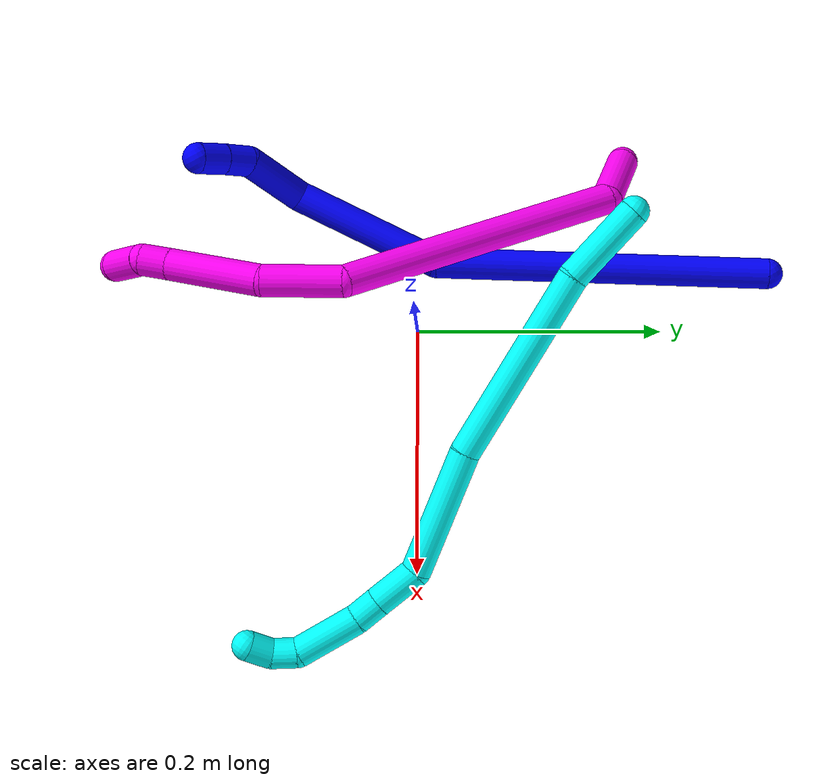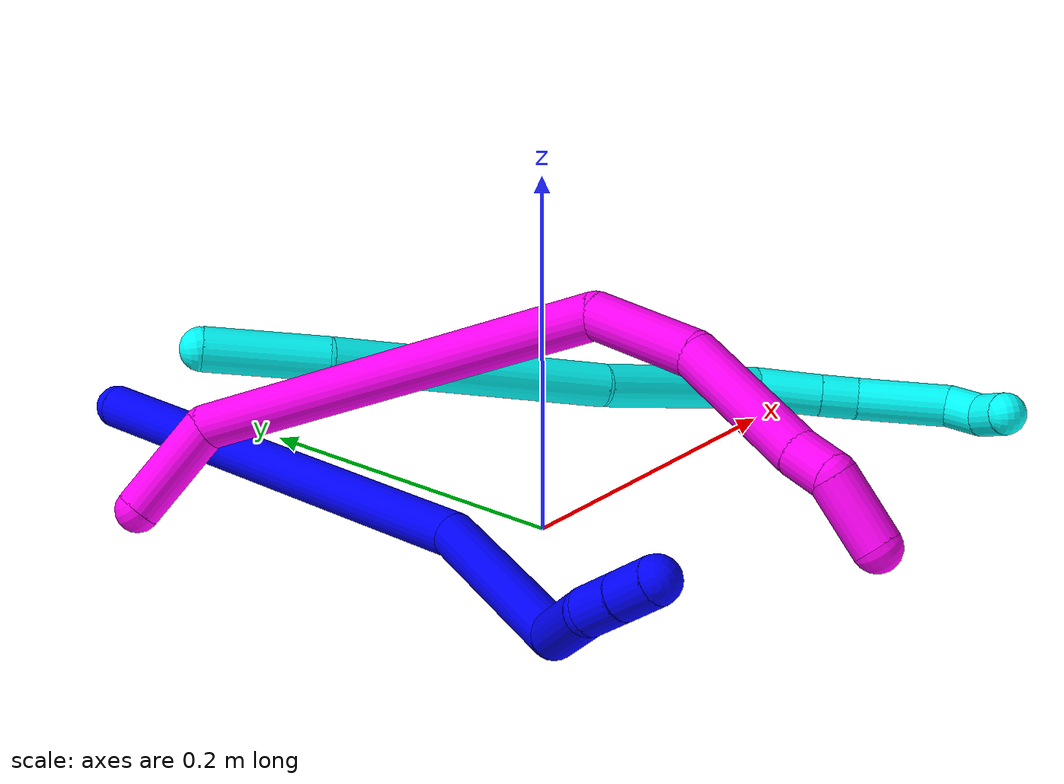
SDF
<sdf version="1.7">
 <world name="default">
  <model name="1">
   <static>0</static>
   <link name="1">
    <collision name="collision-cylinder-e_1_1_4">
     <pose>-0.046354 -0.108998 -0.06722 2.12341 -0.347299 -0.608998</pose>
     <geometry><cylinder><radius>0.0125</radius><length>0.272381</length></cylinder></geometry>
     <surface>
      <friction><ode><mu>1.16</mu><mu2>1.16</mu2><slip1>0</slip1><slip2>0</slip2></ode></friction>
      <contact><ode><kp>1e+06</kp><kd>1</kd><max_vel>0</max_vel><min_depth>0.001</min_depth></ode></contact>
     </surface>
    </collision>
    <visual name="visual-cylinder-e_1_1_4">
     <pose>-0.046354 -0.108998 -0.06722 2.12341 -0.347299 -0.608998</pose>
     <geometry><cylinder><radius>0.0125</radius><length>0.272381</length></cylinder></geometry>
     <material><ambient>0 0 1 1</ambient></material>
    </visual>
    <collision name="collision-cylinder-e_2_4_5">
     <pose>-0.100843 -0.2555 -0.184369 2.49736 -0.12956 -0.383961</pose>
     <geometry><cylinder><radius>0.0125</radius><length>0.125946</length></cylinder></geometry>
     <surface>
      <friction><ode><mu>1.16</mu><mu2>1.16</mu2><slip1>0</slip1><slip2>0</slip2></ode></friction>
      <contact><ode><kp>1e+06</kp><kd>1</kd><max_vel>0</max_vel><min_depth>0.001</min_depth></ode></contact>
     </surface>
    </collision>
    <visual name="visual-cylinder-e_2_4_5">
     <pose>-0.100843 -0.2555 -0.184369 2.49736 -0.12956 -0.383961</pose>
     <geometry><cylinder><radius>0.0125</radius><length>0.125946</length></cylinder></geometry>
     <material><ambient>0 0 1 1</ambient></material>
    </visual>
    <collision name="collision-cylinder-e_3_5_6">
     <pose>-0.124962 -0.296587 -0.256625 2.98247 -0.615266 -2.64985</pose>
     <geometry><cylinder><radius>0.0125</radius><length>0.055382</length></cylinder></geometry>
     <surface>
      <friction><ode><mu>1.16</mu><mu2>1.16</mu2><slip1>0</slip1><slip2>0</slip2></ode></friction>
      <contact><ode><kp>1e+06</kp><kd>1</kd><max_vel>0</max_vel><min_depth>0.001</min_depth></ode></contact>
     </surface>
    </collision>
    <visual name="visual-cylinder-e_3_5_6">
     <pose>-0.124962 -0.296587 -0.256625 2.98247 -0.615266 -2.64985</pose>
     <geometry><cylinder><radius>0.0125</radius><length>0.055382</length></cylinder></geometry>
     <material><ambient>0 0 1 1</ambient></material>
    </visual>
    <collision name="collision-cylinder-e_4_6_7">
     <pose>-0.150026 -0.304545 -0.284566 2.47958 -0.906036 -1.91216</pose>
     <geometry><cylinder><radius>0.0125</radius><length>0.023077</length></cylinder></geometry>
     <surface>
      <friction><ode><mu>1.16</mu><mu2>1.16</mu2><slip1>0</slip1><slip2>0</slip2></ode></friction>
      <contact><ode><kp>1e+06</kp><kd>1</kd><max_vel>0</max_vel><min_depth>0.001</min_depth></ode></contact>
     </surface>
    </collision>
    <visual name="visual-cylinder-e_4_6_7">
     <pose>-0.150026 -0.304545 -0.284566 2.47958 -0.906036 -1.91216</pose>
     <geometry><cylinder><radius>0.0125</radius><length>0.023077</length></cylinder></geometry>
     <material><ambient>0 0 1 1</ambient></material>
    </visual>
    <collision name="collision-cylinder-e_5_7_2">
     <pose>-0.168447 -0.313467 -0.295361 2.42131 -0.934996 -1.8598</pose>
     <geometry><cylinder><radius>0.0125</radius><length>0.023214</length></cylinder></geometry>
     <surface>
      <friction><ode><mu>1.16</mu><mu2>1.16</mu2><slip1>0</slip1><slip2>0</slip2></ode></friction>
      <contact><ode><kp>1e+06</kp><kd>1</kd><max_vel>0</max_vel><min_depth>0.001</min_depth></ode></contact>
     </surface>
    </collision>
    <visual name="visual-cylinder-e_5_7_2">
     <pose>-0.168447 -0.313467 -0.295361 2.42131 -0.934996 -1.8598</pose>
     <geometry><cylinder><radius>0.0125</radius><length>0.023214</length></cylinder></geometry>
     <material><ambient>0 0 1 1</ambient></material>
    </visual>
    <collision name="collision-sphere-2">
     <pose>-0.177786 -0.318013 -0.300542 0 -0 0</pose>
     <geometry><sphere><radius>0.0125</radius></sphere></geometry>
     <surface>
      <friction><ode><mu>1.16</mu><mu2>1.16</mu2><slip1>0</slip1><slip2>0</slip2></ode></friction>
      <contact><ode><kp>1e+06</kp><kd>1</kd><max_vel>0</max_vel><min_depth>0.001</min_depth></ode></contact>
     </surface>
    </collision>
    <visual name="visual-sphere-2">
     <pose>-0.177786 -0.318013 -0.300542 0 -0 0</pose>
     <geometry><sphere><radius>0.0125</radius></sphere></geometry>
     <material><ambient>0 0 1 1</ambient></material>
    </visual>
    <collision name="collision-sphere-7">
     <pose>-0.159107 -0.308921 -0.290181 0 -0 0</pose>
     <geometry><sphere><radius>0.0125</radius></sphere></geometry>
     <surface>
      <friction><ode><mu>1.16</mu><mu2>1.16</mu2><slip1>0</slip1><slip2>0</slip2></ode></friction>
      <contact><ode><kp>1e+06</kp><kd>1</kd><max_vel>0</max_vel><min_depth>0.001</min_depth></ode></contact>
     </surface>
    </collision>
    <visual name="visual-sphere-7">
     <pose>-0.159107 -0.308921 -0.290181 0 -0 0</pose>
     <geometry><sphere><radius>0.0125</radius></sphere></geometry>
     <material><ambient>0 0 1 1</ambient></material>
    </visual>
    <collision name="collision-sphere-6">
     <pose>-0.140944 -0.30017 -0.278952 0 -0 0</pose>
     <geometry><sphere><radius>0.0125</radius></sphere></geometry>
     <surface>
      <friction><ode><mu>1.16</mu><mu2>1.16</mu2><slip1>0</slip1><slip2>0</slip2></ode></friction>
      <contact><ode><kp>1e+06</kp><kd>1</kd><max_vel>0</max_vel><min_depth>0.001</min_depth></ode></contact>
     </surface>
    </collision>
    <visual name="visual-sphere-6">
     <pose>-0.140944 -0.30017 -0.278952 0 -0 0</pose>
     <geometry><sphere><radius>0.0125</radius></sphere></geometry>
     <material><ambient>0 0 1 1</ambient></material>
    </visual>
    <collision name="collision-sphere-5">
     <pose>-0.108979 -0.293004 -0.234298 0 -0 0</pose>
     <geometry><sphere><radius>0.0125</radius></sphere></geometry>
     <surface>
      <friction><ode><mu>1.16</mu><mu2>1.16</mu2><slip1>0</slip1><slip2>0</slip2></ode></friction>
      <contact><ode><kp>1e+06</kp><kd>1</kd><max_vel>0</max_vel><min_depth>0.001</min_depth></ode></contact>
     </surface>
    </collision>
    <visual name="visual-sphere-5">
     <pose>-0.108979 -0.293004 -0.234298 0 -0 0</pose>
     <geometry><sphere><radius>0.0125</radius></sphere></geometry>
     <material><ambient>0 0 1 1</ambient></material>
    </visual>
    <collision name="collision-sphere-1">
     <geometry><sphere><radius>0.0125</radius></sphere></geometry>
     <surface>
      <friction><ode><mu>1.16</mu><mu2>1.16</mu2><slip1>0</slip1><slip2>0</slip2></ode></friction>
      <contact><ode><kp>1e+06</kp><kd>1</kd><max_vel>0</max_vel><min_depth>0.001</min_depth></ode></contact>
     </surface>
    </collision>
    <visual name="visual-sphere-1">
     <geometry><sphere><radius>0.0125</radius></sphere></geometry>
     <material><ambient>0 0 1 1</ambient></material>
    </visual>
    <collision name="collision-sphere-4">
     <pose>-0.092707 -0.217996 -0.13444 0 -0 0</pose>
     <geometry><sphere><radius>0.0125</radius></sphere></geometry>
     <surface>
      <friction><ode><mu>1.16</mu><mu2>1.16</mu2><slip1>0</slip1><slip2>0</slip2></ode></friction>
      <contact><ode><kp>1e+06</kp><kd>1</kd><max_vel>0</max_vel><min_depth>0.001</min_depth></ode></contact>
     </surface>
    </collision>
    <visual name="visual-sphere-4">
     <pose>-0.092707 -0.217996 -0.13444 0 -0 0</pose>
     <geometry><sphere><radius>0.0125</radius></sphere></geometry>
     <material><ambient>0 0 1 1</ambient></material>
    </visual>
    <inertial>
     <pose>-0.07924 -0.185197 -0.138332 0 -0 0</pose>
     <mass>0.5</mass>
     <inertia>
      <ixx>0.000455</ixx>
      <ixy>0</ixy>
      <ixz>0</ixz>
      <iyy>-0.001562</iyy>
      <iyz>0</iyz>
      <izz>0.00205</izz>
     </inertia>
    </inertial>
   </link>
   <pose>-0.047008 0.287422 0.012381 2.02069 0.977215 2.45386</pose>
  </model>
  <model name="3">
   <static>0</static>
   <link name="3">
    <collision name="collision-cylinder-e_1_1_4">
     <pose>0.004541 -0.006014 -0.034045 2.96673 0.130597 1.28191</pose>
     <geometry><cylinder><radius>0.0125</radius><length>0.069739</length></cylinder></geometry>
     <surface>
      <friction><ode><mu>1.16</mu><mu2>1.16</mu2><slip1>0</slip1><slip2>0</slip2></ode></friction>
      <contact><ode><kp>1e+06</kp><kd>1</kd><max_vel>0</max_vel><min_depth>0.001</min_depth></ode></contact>
     </surface>
    </collision>
    <visual name="visual-cylinder-e_1_1_4">
     <pose>0.004541 -0.006014 -0.034045 2.96673 0.130597 1.28191</pose>
     <geometry><cylinder><radius>0.0125</radius><length>0.069739</length></cylinder></geometry>
     <material><ambient>0.003922 1 0.996078 1</ambient></material>
    </visual>
    <collision name="collision-cylinder-e_2_4_5">
     <pose>0.002968 -0.031341 -0.147945 2.90431 -0.074276 -0.604323</pose>
     <geometry><cylinder><radius>0.0125</radius><length>0.164768</length></cylinder></geometry>
     <surface>
      <friction><ode><mu>1.16</mu><mu2>1.16</mu2><slip1>0</slip1><slip2>0</slip2></ode></friction>
      <contact><ode><kp>1e+06</kp><kd>1</kd><max_vel>0</max_vel><min_depth>0.001</min_depth></ode></contact>
     </surface>
    </collision>
    <visual name="visual-cylinder-e_2_4_5">
     <pose>0.002968 -0.031341 -0.147945 2.90431 -0.074276 -0.604323</pose>
     <geometry><cylinder><radius>0.0125</radius><length>0.164768</length></cylinder></geometry>
     <material><ambient>0.003922 1 0.996078 1</ambient></material>
    </visual>
    <collision name="collision-cylinder-e_3_5_6">
     <pose>-0.015205 -0.061009 -0.278224 2.93901 -0.230136 -1.69899</pose>
     <geometry><cylinder><radius>0.0125</radius><length>0.10574</length></cylinder></geometry>
     <surface>
      <friction><ode><mu>1.16</mu><mu2>1.16</mu2><slip1>0</slip1><slip2>0</slip2></ode></friction>
      <contact><ode><kp>1e+06</kp><kd>1</kd><max_vel>0</max_vel><min_depth>0.001</min_depth></ode></contact>
     </surface>
    </collision>
    <visual name="visual-cylinder-e_3_5_6">
     <pose>-0.015205 -0.061009 -0.278224 2.93901 -0.230136 -1.69899</pose>
     <geometry><cylinder><radius>0.0125</radius><length>0.10574</length></cylinder></geometry>
     <material><ambient>0.003922 1 0.996078 1</ambient></material>
    </visual>
    <collision name="collision-cylinder-e_4_6_7">
     <pose>-0.021892 -0.074625 -0.347183 2.96753 0.278154 2.02682</pose>
     <geometry><cylinder><radius>0.0125</radius><length>0.039144</length></cylinder></geometry>
     <surface>
      <friction><ode><mu>1.16</mu><mu2>1.16</mu2><slip1>0</slip1><slip2>0</slip2></ode></friction>
      <contact><ode><kp>1e+06</kp><kd>1</kd><max_vel>0</max_vel><min_depth>0.001</min_depth></ode></contact>
     </surface>
    </collision>
    <visual name="visual-cylinder-e_4_6_7">
     <pose>-0.021892 -0.074625 -0.347183 2.96753 0.278154 2.02682</pose>
     <geometry><cylinder><radius>0.0125</radius><length>0.039144</length></cylinder></geometry>
     <material><ambient>0.003922 1 0.996078 1</ambient></material>
    </visual>
    <collision name="collision-cylinder-e_5_7_8">
     <pose>-0.013511 -0.079561 -0.376437 2.98645 0.2703 2.10304</pose>
     <geometry><cylinder><radius>0.0125</radius><length>0.022515</length></cylinder></geometry>
     <surface>
      <friction><ode><mu>1.16</mu><mu2>1.16</mu2><slip1>0</slip1><slip2>0</slip2></ode></friction>
      <contact><ode><kp>1e+06</kp><kd>1</kd><max_vel>0</max_vel><min_depth>0.001</min_depth></ode></contact>
     </surface>
    </collision>
    <visual name="visual-cylinder-e_5_7_8">
     <pose>-0.013511 -0.079561 -0.376437 2.98645 0.2703 2.10304</pose>
     <geometry><cylinder><radius>0.0125</radius><length>0.022515</length></cylinder></geometry>
     <material><ambient>0.003922 1 0.996078 1</ambient></material>
    </visual>
    <collision name="collision-cylinder-e_6_8_9">
     <pose>0.001144 -0.083749 -0.411687 3.03956 0.441326 2.69394</pose>
     <geometry><cylinder><radius>0.0125</radius><length>0.054546</length></cylinder></geometry>
     <surface>
      <friction><ode><mu>1.16</mu><mu2>1.16</mu2><slip1>0</slip1><slip2>0</slip2></ode></friction>
      <contact><ode><kp>1e+06</kp><kd>1</kd><max_vel>0</max_vel><min_depth>0.001</min_depth></ode></contact>
     </surface>
    </collision>
    <visual name="visual-cylinder-e_6_8_9">
     <pose>0.001144 -0.083749 -0.411687 3.03956 0.441326 2.69394</pose>
     <geometry><cylinder><radius>0.0125</radius><length>0.054546</length></cylinder></geometry>
     <material><ambient>0.003922 1 0.996078 1</ambient></material>
    </visual>
    <collision name="collision-cylinder-e_7_9_10">
     <pose>0.021431 -0.087742 -0.442727 2.91785 0.912878 2.69177</pose>
     <geometry><cylinder><radius>0.0125</radius><length>0.021832</length></cylinder></geometry>
     <surface>
      <friction><ode><mu>1.16</mu><mu2>1.16</mu2><slip1>0</slip1><slip2>0</slip2></ode></friction>
      <contact><ode><kp>1e+06</kp><kd>1</kd><max_vel>0</max_vel><min_depth>0.001</min_depth></ode></contact>
     </surface>
    </collision>
    <visual name="visual-cylinder-e_7_9_10">
     <pose>0.021431 -0.087742 -0.442727 2.91785 0.912878 2.69177</pose>
     <geometry><cylinder><radius>0.0125</radius><length>0.021832</length></cylinder></geometry>
     <material><ambient>0.003922 1 0.996078 1</ambient></material>
    </visual>
    <collision name="collision-cylinder-e_8_10_2">
     <pose>0.040235 -0.086436 -0.451835 -2.32148 1.21219 -2.02129</pose>
     <geometry><cylinder><radius>0.0125</radius><length>0.021716</length></cylinder></geometry>
     <surface>
      <friction><ode><mu>1.16</mu><mu2>1.16</mu2><slip1>0</slip1><slip2>0</slip2></ode></friction>
      <contact><ode><kp>1e+06</kp><kd>1</kd><max_vel>0</max_vel><min_depth>0.001</min_depth></ode></contact>
     </surface>
    </collision>
    <visual name="visual-cylinder-e_8_10_2">
     <pose>0.040235 -0.086436 -0.451835 -2.32148 1.21219 -2.02129</pose>
     <geometry><cylinder><radius>0.0125</radius><length>0.021716</length></cylinder></geometry>
     <material><ambient>0.003922 1 0.996078 1</ambient></material>
    </visual>
    <collision name="collision-sphere-2">
     <pose>0.050403 -0.083649 -0.454434 0 -0 0</pose>
     <geometry><sphere><radius>0.0125</radius></sphere></geometry>
     <surface>
      <friction><ode><mu>1.16</mu><mu2>1.16</mu2><slip1>0</slip1><slip2>0</slip2></ode></friction>
      <contact><ode><kp>1e+06</kp><kd>1</kd><max_vel>0</max_vel><min_depth>0.001</min_depth></ode></contact>
     </surface>
    </collision>
    <visual name="visual-sphere-2">
     <pose>0.050403 -0.083649 -0.454434 0 -0 0</pose>
     <geometry><sphere><radius>0.0125</radius></sphere></geometry>
     <material><ambient>0.003922 1 0.996078 1</ambient></material>
    </visual>
    <collision name="collision-sphere-10">
     <pose>0.030068 -0.089223 -0.449235 0 -0 0</pose>
     <geometry><sphere><radius>0.0125</radius></sphere></geometry>
     <surface>
      <friction><ode><mu>1.16</mu><mu2>1.16</mu2><slip1>0</slip1><slip2>0</slip2></ode></friction>
      <contact><ode><kp>1e+06</kp><kd>1</kd><max_vel>0</max_vel><min_depth>0.001</min_depth></ode></contact>
     </surface>
    </collision>
    <visual name="visual-sphere-10">
     <pose>0.030068 -0.089223 -0.449235 0 -0 0</pose>
     <geometry><sphere><radius>0.0125</radius></sphere></geometry>
     <material><ambient>0.003922 1 0.996078 1</ambient></material>
    </visual>
    <collision name="collision-sphere-9">
     <pose>0.012793 -0.086261 -0.436219 0 -0 0</pose>
     <geometry><sphere><radius>0.0125</radius></sphere></geometry>
     <surface>
      <friction><ode><mu>1.16</mu><mu2>1.16</mu2><slip1>0</slip1><slip2>0</slip2></ode></friction>
      <contact><ode><kp>1e+06</kp><kd>1</kd><max_vel>0</max_vel><min_depth>0.001</min_depth></ode></contact>
     </surface>
    </collision>
    <visual name="visual-sphere-9">
     <pose>0.012793 -0.086261 -0.436219 0 -0 0</pose>
     <geometry><sphere><radius>0.0125</radius></sphere></geometry>
     <material><ambient>0.003922 1 0.996078 1</ambient></material>
    </visual>
    <collision name="collision-sphere-4">
     <pose>0.009082 -0.012029 -0.06809 0 -0 0</pose>
     <geometry><sphere><radius>0.0125</radius></sphere></geometry>
     <surface>
      <friction><ode><mu>1.16</mu><mu2>1.16</mu2><slip1>0</slip1><slip2>0</slip2></ode></friction>
      <contact><ode><kp>1e+06</kp><kd>1</kd><max_vel>0</max_vel><min_depth>0.001</min_depth></ode></contact>
     </surface>
    </collision>
    <visual name="visual-sphere-4">
     <pose>0.009082 -0.012029 -0.06809 0 -0 0</pose>
     <geometry><sphere><radius>0.0125</radius></sphere></geometry>
     <material><ambient>0.003922 1 0.996078 1</ambient></material>
    </visual>
    <collision name="collision-sphere-1">
     <geometry><sphere><radius>0.0125</radius></sphere></geometry>
     <surface>
      <friction><ode><mu>1.16</mu><mu2>1.16</mu2><slip1>0</slip1><slip2>0</slip2></ode></friction>
      <contact><ode><kp>1e+06</kp><kd>1</kd><max_vel>0</max_vel><min_depth>0.001</min_depth></ode></contact>
     </surface>
    </collision>
    <visual name="visual-sphere-1">
     <geometry><sphere><radius>0.0125</radius></sphere></geometry>
     <material><ambient>0.003922 1 0.996078 1</ambient></material>
    </visual>
    <collision name="collision-sphere-8">
     <pose>-0.010506 -0.081237 -0.387155 0 -0 0</pose>
     <geometry><sphere><radius>0.0125</radius></sphere></geometry>
     <surface>
      <friction><ode><mu>1.16</mu><mu2>1.16</mu2><slip1>0</slip1><slip2>0</slip2></ode></friction>
      <contact><ode><kp>1e+06</kp><kd>1</kd><max_vel>0</max_vel><min_depth>0.001</min_depth></ode></contact>
     </surface>
    </collision>
    <visual name="visual-sphere-8">
     <pose>-0.010506 -0.081237 -0.387155 0 -0 0</pose>
     <geometry><sphere><radius>0.0125</radius></sphere></geometry>
     <material><ambient>0.003922 1 0.996078 1</ambient></material>
    </visual>
    <collision name="collision-sphere-5">
     <pose>-0.003145 -0.050652 -0.2278 0 -0 0</pose>
     <geometry><sphere><radius>0.0125</radius></sphere></geometry>
     <surface>
      <friction><ode><mu>1.16</mu><mu2>1.16</mu2><slip1>0</slip1><slip2>0</slip2></ode></friction>
      <contact><ode><kp>1e+06</kp><kd>1</kd><max_vel>0</max_vel><min_depth>0.001</min_depth></ode></contact>
     </surface>
    </collision>
    <visual name="visual-sphere-5">
     <pose>-0.003145 -0.050652 -0.2278 0 -0 0</pose>
     <geometry><sphere><radius>0.0125</radius></sphere></geometry>
     <material><ambient>0.003922 1 0.996078 1</ambient></material>
    </visual>
    <collision name="collision-sphere-6">
     <pose>-0.027266 -0.071366 -0.328648 0 -0 0</pose>
     <geometry><sphere><radius>0.0125</radius></sphere></geometry>
     <surface>
      <friction><ode><mu>1.16</mu><mu2>1.16</mu2><slip1>0</slip1><slip2>0</slip2></ode></friction>
      <contact><ode><kp>1e+06</kp><kd>1</kd><max_vel>0</max_vel><min_depth>0.001</min_depth></ode></contact>
     </surface>
    </collision>
    <visual name="visual-sphere-6">
     <pose>-0.027266 -0.071366 -0.328648 0 -0 0</pose>
     <geometry><sphere><radius>0.0125</radius></sphere></geometry>
     <material><ambient>0.003922 1 0.996078 1</ambient></material>
    </visual>
    <collision name="collision-sphere-7">
     <pose>-0.016517 -0.077884 -0.365719 0 -0 0</pose>
     <geometry><sphere><radius>0.0125</radius></sphere></geometry>
     <surface>
      <friction><ode><mu>1.16</mu><mu2>1.16</mu2><slip1>0</slip1><slip2>0</slip2></ode></friction>
      <contact><ode><kp>1e+06</kp><kd>1</kd><max_vel>0</max_vel><min_depth>0.001</min_depth></ode></contact>
     </surface>
    </collision>
    <visual name="visual-sphere-7">
     <pose>-0.016517 -0.077884 -0.365719 0 -0 0</pose>
     <geometry><sphere><radius>0.0125</radius></sphere></geometry>
     <material><ambient>0.003922 1 0.996078 1</ambient></material>
    </visual>
    <inertial>
     <pose>-0.001118 -0.050215 -0.240339 0 -0 0</pose>
     <mass>0.5</mass>
     <inertia>
      <ixx>2.2e-05</ixx>
      <ixy>0</ixy>
      <ixz>0</ixz>
      <iyy>-0.000546</iyy>
      <iyz>0</iyz>
      <izz>0.000117</izz>
     </inertia>
    </inertial>
   </link>
   <pose>-0.085053 0.170275 0.088941 1.58926 -0.12422 -2.17306</pose>
  </model>
  <model name="10">
   <static>0</static>
   <link name="10">
    <collision name="collision-cylinder-e_1_1_4">
     <pose>-0.024719 -0.01261 0.007837 1.01474 -1.02992 -0.609568</pose>
     <geometry><cylinder><radius>0.0125</radius><length>0.05767</length></cylinder></geometry>
     <surface>
      <friction><ode><mu>1.16</mu><mu2>1.16</mu2><slip1>0</slip1><slip2>0</slip2></ode></friction>
      <contact><ode><kp>1e+06</kp><kd>1</kd><max_vel>0</max_vel><min_depth>0.001</min_depth></ode></contact>
     </surface>
    </collision>
    <visual name="visual-cylinder-e_1_1_4">
     <pose>-0.024719 -0.01261 0.007837 1.01474 -1.02992 -0.609568</pose>
     <geometry><cylinder><radius>0.0125</radius><length>0.05767</length></cylinder></geometry>
     <material><ambient>1 0 0.964706 1</ambient></material>
    </visual>
    <collision name="collision-cylinder-e_2_4_5">
     <pose>-0.165348 -0.009268 -0.005743 -2.5014 -1.34436 2.35221</pose>
     <geometry><cylinder><radius>0.0125</radius><length>0.237892</length></cylinder></geometry>
     <surface>
      <friction><ode><mu>1.16</mu><mu2>1.16</mu2><slip1>0</slip1><slip2>0</slip2></ode></friction>
      <contact><ode><kp>1e+06</kp><kd>1</kd><max_vel>0</max_vel><min_depth>0.001</min_depth></ode></contact>
     </surface>
    </collision>
    <visual name="visual-cylinder-e_2_4_5">
     <pose>-0.165348 -0.009268 -0.005743 -2.5014 -1.34436 2.35221</pose>
     <geometry><cylinder><radius>0.0125</radius><length>0.237892</length></cylinder></geometry>
     <material><ambient>1 0 0.964706 1</ambient></material>
    </visual>
    <collision name="collision-cylinder-e_3_5_6">
     <pose>-0.302555 0.022807 -0.043945 -2.37629 -0.741058 1.53535</pose>
     <geometry><cylinder><radius>0.0125</radius><length>0.063097</length></cylinder></geometry>
     <surface>
      <friction><ode><mu>1.16</mu><mu2>1.16</mu2><slip1>0</slip1><slip2>0</slip2></ode></friction>
      <contact><ode><kp>1e+06</kp><kd>1</kd><max_vel>0</max_vel><min_depth>0.001</min_depth></ode></contact>
     </surface>
    </collision>
    <visual name="visual-cylinder-e_3_5_6">
     <pose>-0.302555 0.022807 -0.043945 -2.37629 -0.741058 1.53535</pose>
     <geometry><cylinder><radius>0.0125</radius><length>0.063097</length></cylinder></geometry>
     <material><ambient>1 0 0.964706 1</ambient></material>
    </visual>
    <collision name="collision-cylinder-e_4_6_7">
     <pose>-0.339717 0.064227 -0.086916 -2.37347 -0.410927 0.952242</pose>
     <geometry><cylinder><radius>0.0125</radius><length>0.079429</length></cylinder></geometry>
     <surface>
      <friction><ode><mu>1.16</mu><mu2>1.16</mu2><slip1>0</slip1><slip2>0</slip2></ode></friction>
      <contact><ode><kp>1e+06</kp><kd>1</kd><max_vel>0</max_vel><min_depth>0.001</min_depth></ode></contact>
     </surface>
    </collision>
    <visual name="visual-cylinder-e_4_6_7">
     <pose>-0.339717 0.064227 -0.086916 -2.37347 -0.410927 0.952242</pose>
     <geometry><cylinder><radius>0.0125</radius><length>0.079429</length></cylinder></geometry>
     <material><ambient>1 0 0.964706 1</ambient></material>
    </visual>
    <collision name="collision-cylinder-e_5_7_8">
     <pose>-0.361618 0.096932 -0.119643 -2.29417 -0.548314 1.1151</pose>
     <geometry><cylinder><radius>0.0125</radius><length>0.023162</length></cylinder></geometry>
     <surface>
      <friction><ode><mu>1.16</mu><mu2>1.16</mu2><slip1>0</slip1><slip2>0</slip2></ode></friction>
      <contact><ode><kp>1e+06</kp><kd>1</kd><max_vel>0</max_vel><min_depth>0.001</min_depth></ode></contact>
     </surface>
    </collision>
    <visual name="visual-cylinder-e_5_7_8">
     <pose>-0.361618 0.096932 -0.119643 -2.29417 -0.548314 1.1151</pose>
     <geometry><cylinder><radius>0.0125</radius><length>0.023162</length></cylinder></geometry>
     <material><ambient>1 0 0.964706 1</ambient></material>
    </visual>
    <collision name="collision-cylinder-e_6_8_2">
     <pose>-0.369277 0.110665 -0.144426 -2.80782 -0.083841 0.488086</pose>
     <geometry><cylinder><radius>0.0125</radius><length>0.038749</length></cylinder></geometry>
     <surface>
      <friction><ode><mu>1.16</mu><mu2>1.16</mu2><slip1>0</slip1><slip2>0</slip2></ode></friction>
      <contact><ode><kp>1e+06</kp><kd>1</kd><max_vel>0</max_vel><min_depth>0.001</min_depth></ode></contact>
     </surface>
    </collision>
    <visual name="visual-cylinder-e_6_8_2">
     <pose>-0.369277 0.110665 -0.144426 -2.80782 -0.083841 0.488086</pose>
     <geometry><cylinder><radius>0.0125</radius><length>0.038749</length></cylinder></geometry>
     <material><ambient>1 0 0.964706 1</ambient></material>
    </visual>
    <collision name="collision-sphere-2">
     <pose>-0.3709 0.11699 -0.162667 0 -0 0</pose>
     <geometry><sphere><radius>0.0125</radius></sphere></geometry>
     <surface>
      <friction><ode><mu>1.16</mu><mu2>1.16</mu2><slip1>0</slip1><slip2>0</slip2></ode></friction>
      <contact><ode><kp>1e+06</kp><kd>1</kd><max_vel>0</max_vel><min_depth>0.001</min_depth></ode></contact>
     </surface>
    </collision>
    <visual name="visual-sphere-2">
     <pose>-0.3709 0.11699 -0.162667 0 -0 0</pose>
     <geometry><sphere><radius>0.0125</radius></sphere></geometry>
     <material><ambient>1 0 0.964706 1</ambient></material>
    </visual>
    <collision name="collision-sphere-4">
     <pose>-0.049439 -0.02522 0.015673 0 -0 0</pose>
     <geometry><sphere><radius>0.0125</radius></sphere></geometry>
     <surface>
      <friction><ode><mu>1.16</mu><mu2>1.16</mu2><slip1>0</slip1><slip2>0</slip2></ode></friction>
      <contact><ode><kp>1e+06</kp><kd>1</kd><max_vel>0</max_vel><min_depth>0.001</min_depth></ode></contact>
     </surface>
    </collision>
    <visual name="visual-sphere-4">
     <pose>-0.049439 -0.02522 0.015673 0 -0 0</pose>
     <geometry><sphere><radius>0.0125</radius></sphere></geometry>
     <material><ambient>1 0 0.964706 1</ambient></material>
    </visual>
    <collision name="collision-sphere-1">
     <geometry><sphere><radius>0.0125</radius></sphere></geometry>
     <surface>
      <friction><ode><mu>1.16</mu><mu2>1.16</mu2><slip1>0</slip1><slip2>0</slip2></ode></friction>
      <contact><ode><kp>1e+06</kp><kd>1</kd><max_vel>0</max_vel><min_depth>0.001</min_depth></ode></contact>
     </surface>
    </collision>
    <visual name="visual-sphere-1">
     <geometry><sphere><radius>0.0125</radius></sphere></geometry>
     <material><ambient>1 0 0.964706 1</ambient></material>
    </visual>
    <collision name="collision-sphere-8">
     <pose>-0.367655 0.10434 -0.126185 0 -0 0</pose>
     <geometry><sphere><radius>0.0125</radius></sphere></geometry>
     <surface>
      <friction><ode><mu>1.16</mu><mu2>1.16</mu2><slip1>0</slip1><slip2>0</slip2></ode></friction>
      <contact><ode><kp>1e+06</kp><kd>1</kd><max_vel>0</max_vel><min_depth>0.001</min_depth></ode></contact>
     </surface>
    </collision>
    <visual name="visual-sphere-8">
     <pose>-0.367655 0.10434 -0.126185 0 -0 0</pose>
     <geometry><sphere><radius>0.0125</radius></sphere></geometry>
     <material><ambient>1 0 0.964706 1</ambient></material>
    </visual>
    <collision name="collision-sphere-5">
     <pose>-0.281257 0.006683 -0.027159 0 -0 0</pose>
     <geometry><sphere><radius>0.0125</radius></sphere></geometry>
     <surface>
      <friction><ode><mu>1.16</mu><mu2>1.16</mu2><slip1>0</slip1><slip2>0</slip2></ode></friction>
      <contact><ode><kp>1e+06</kp><kd>1</kd><max_vel>0</max_vel><min_depth>0.001</min_depth></ode></contact>
     </surface>
    </collision>
    <visual name="visual-sphere-5">
     <pose>-0.281257 0.006683 -0.027159 0 -0 0</pose>
     <geometry><sphere><radius>0.0125</radius></sphere></geometry>
     <material><ambient>1 0 0.964706 1</ambient></material>
    </visual>
    <collision name="collision-sphere-6">
     <pose>-0.323852 0.038931 -0.06073 0 -0 0</pose>
     <geometry><sphere><radius>0.0125</radius></sphere></geometry>
     <surface>
      <friction><ode><mu>1.16</mu><mu2>1.16</mu2><slip1>0</slip1><slip2>0</slip2></ode></friction>
      <contact><ode><kp>1e+06</kp><kd>1</kd><max_vel>0</max_vel><min_depth>0.001</min_depth></ode></contact>
     </surface>
    </collision>
    <visual name="visual-sphere-6">
     <pose>-0.323852 0.038931 -0.06073 0 -0 0</pose>
     <geometry><sphere><radius>0.0125</radius></sphere></geometry>
     <material><ambient>1 0 0.964706 1</ambient></material>
    </visual>
    <collision name="collision-sphere-7">
     <pose>-0.355581 0.089523 -0.113101 0 -0 0</pose>
     <geometry><sphere><radius>0.0125</radius></sphere></geometry>
     <surface>
      <friction><ode><mu>1.16</mu><mu2>1.16</mu2><slip1>0</slip1><slip2>0</slip2></ode></friction>
      <contact><ode><kp>1e+06</kp><kd>1</kd><max_vel>0</max_vel><min_depth>0.001</min_depth></ode></contact>
     </surface>
    </collision>
    <visual name="visual-sphere-7">
     <pose>-0.355581 0.089523 -0.113101 0 -0 0</pose>
     <geometry><sphere><radius>0.0125</radius></sphere></geometry>
     <material><ambient>1 0 0.964706 1</ambient></material>
    </visual>
    <inertial>
     <pose>-0.219039 0.020284 -0.037917 0 -0 0</pose>
     <mass>0.5</mass>
     <inertia>
      <ixx>6.1e-05</ixx>
      <ixy>0</ixy>
      <ixz>0</ixz>
      <iyy>0.001358</iyy>
      <iyz>0</iyz>
      <izz>0.000953</izz>
     </inertia>
    </inertial>
   </link>
   <pose>-0.139581 0.168739 0.012416 -0.015939 0.575223 2.08175</pose>
  </model>
 </world>
</sdf>
